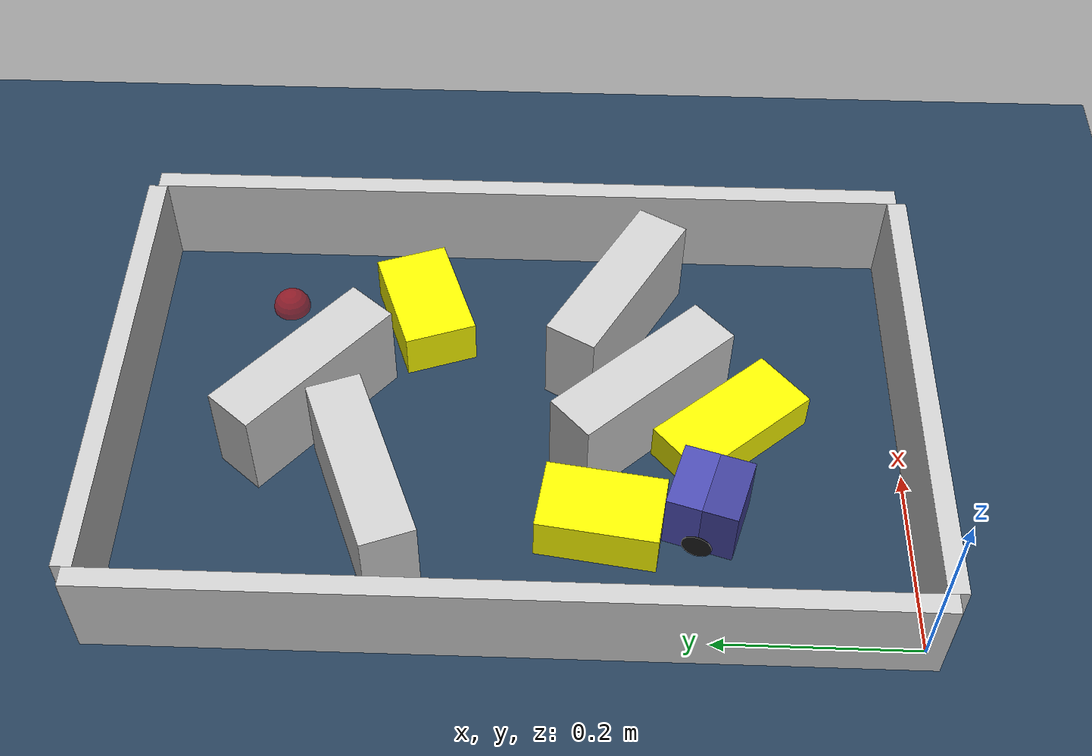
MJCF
<?xml version='1.0' encoding='utf-8'?>
<mujoco model="real_buildable">
  <compiler angle="degree" />
  <option timestep="0.002" integrator="implicitfast" iterations="100" cone="elliptic" />
  <default>
    <geom density="1" />
  </default>
  <asset>
    <texture builtin="gradient" height="3072" rgb1="0.3 0.5 0.7" rgb2="0 0 0" type="skybox" width="512" />
    <texture builtin="checker" height="300" mark="edge" markrgb="0.8 0.8 0.8" name="groundplane" rgb1="0.2 0.3 0.4" rgb2="0.1 0.2 0.3" type="2d" width="300" />
    <material name="groundplane" reflectance="0.2" texrepeat="5 5" texture="groundplane" texuniform="true" />
  </asset>
  <worldbody>
    <light dir="0 0 -1" directional="true" pos="0 0 1.5" />
    <geom name="floor" type="plane" condim="4" friction="0.5 0.005 0.001" material="groundplane" size="0 0 0.05" />
    <body name="walls">
      <geom name="wall_boundary_left" type="box" condim="4" friction="1.0 0.005 0.0001" rgba="0.8 0.8 0.8 1" pos="-0.010000 0.387500 0.050000" euler="0 0 0.000000" size="0.010000 0.397500 0.050000" />
      <geom name="wall_boundary_right" type="box" condim="4" friction="1.0 0.005 0.0001" rgba="0.8 0.8 0.8 1" pos="0.500000 0.387500 0.050000" euler="0 0 0.000000" size="0.010000 0.397500 0.050000" />
      <geom name="wall_boundary_bottom" type="box" condim="4" friction="1.0 0.005 0.0001" rgba="0.8 0.8 0.8 1" pos="0.245000 -0.010000 0.050000" euler="0 0 0.000000" size="0.245000 0.010000 0.050000" />
      <geom name="wall_boundary_top" type="box" condim="4" friction="1.0 0.005 0.0001" rgba="0.8 0.8 0.8 1" pos="0.245000 0.785000 0.050000" euler="0 0 0.000000" size="0.245000 0.010000 0.050000" />
      <geom name="wall_inner_1" type="box" condim="4" friction="1.0 0.005 0.0001" rgba="0.8 0.8 0.8 1" pos="0.372899 0.288295 0.050000" euler="0 0 -29.588602" size="0.097500 0.027500 0.050000" />
      <geom name="wall_inner_2" type="box" condim="4" friction="1.0 0.005 0.0001" rgba="0.8 0.8 0.8 1" pos="0.250287 0.263436 0.050000" euler="0 0 -47.711311" size="0.097500 0.027500 0.050000" />
      <geom name="wall_inner_3" type="box" condim="4" friction="1.0 0.005 0.0001" rgba="0.8 0.8 0.8 1" pos="0.132000 0.532000 0.050000" euler="0 0 20.900000" size="0.097500 0.027500 0.050000" />
      <geom name="wall_inner_4" type="box" condim="4" friction="1.0 0.005 0.0001" rgba="0.8 0.8 0.8 1" pos="0.256000 0.601000 0.050000" euler="0 0 139.600000" size="0.097500 0.027500 0.050000" />
    </body>
    <body name="car" pos="0.12832868740488337 0.20009574480514053 0.01" quat="0.80367924578134287 0 0 0.59506274450710817">
      <freejoint name="car_freejoint" />
      <inertial pos="0 0 0.0375" mass="0.35" diaginertia="0.000266 0.000266 0.000286" />
      <geom name="front_chassis_collision" type="box" pos="0.0175 0 0.0375" size="0.0175 0.035 0.0325" rgba="0.3 0.3 0.7 1" />
      <geom name="rear_chassis_collision" type="box" pos="-0.0175 0 0.0375" size="0.0175 0.035 0.0325" rgba="0.25 0.25 0.6 1" />
      <geom name="front_marker" type="box" pos="0.034 0 0.0505" size="0.002 0.015 0.01" rgba="1 0.2 0.2 1" contype="0" conaffinity="0" />
      <body name="rear_support_body" pos="-0.03 0 0.0025">
        <joint name="rear_caster_joint" type="ball" damping="0.0001" />
        <inertial pos="0 0 0" mass="0.025" diaginertia="0.000001 0.000001 0.000001" />
        <geom name="rear_support" type="sphere" pos="0 0 0" size="0.0025" friction="0 0 0" rgba="0.7 0.1 0.1 1" />
      </body>
      <body name="front_support_body" pos="0.03 0 0.0025">
        <joint name="front_caster_joint" type="ball" damping="0.0001" />
        <inertial pos="0 0 0" mass="0.025" diaginertia="0.000001 0.000001 0.000001" />
        <geom name="front_support" type="sphere" pos="0 0 0" size="0.0025" friction="0 0 0" rgba="0.1 0.7 0.1 1" />
      </body>
      <body name="left_wheel" pos="0 0.0375 0.015">
        <inertial pos="0 0 0" mass="0.05" diaginertia="0.000003 0.000006 0.000003" />
        <joint name="left_wheel_joint" type="hinge" axis="0 1 0" damping="0.01" armature="0.0001" />
        <geom name="left_wheel_collision" type="cylinder" size="0.015 0.0005" euler="90 0 0" rgba="0.1 0.1 0.1 1" />
      </body>
      <body name="right_wheel" pos="0 -0.0375 0.015">
        <inertial pos="0 0 0" mass="0.05" diaginertia="0.000003 0.000006 0.000003" />
        <joint name="right_wheel_joint" type="hinge" axis="0 1 0" damping="0.01" armature="0.0001" />
        <geom name="right_wheel_collision" type="cylinder" size="0.015 0.0005" euler="90 0 0" rgba="0.1 0.1 0.1 1" />
      </body>
    </body>
    <body name="obstacle_0_movable">
      <geom name="obstacle_0_movable" condim="4" pos="0.1240066911923815 0.30216830261109756 0.025000000000000001" friction="1 0.005 0.0001" rgba="1 1 0 1" size="0.037500 0.060000 0.025000" type="box" mass="0.1" quat="0.072522078954117858 0 0 0.99736680717987236" />
      <joint type="free" />
    </body>
    <body name="obstacle_1_movable">
      <geom name="obstacle_1_movable" condim="4" pos="0.38799999999999968 0.48999999999999871 0.025000000000000001" friction="1 0.005 0.0001" rgba="1 1 0 1" size="0.037500 0.060000 0.025000" type="box" mass="0.1" quat="0.81664155516167891 0 0 -0.57714519003723364" />
      <joint type="free" />
    </body>
    <body name="obstacle_2_movable">
      <geom name="obstacle_2_movable" condim="4" pos="0.24369802937759033 0.17110958029679352 0.02" friction="1 0.005 0.0001" rgba="1 1 0 1" size="0.035000 0.075000 0.020000" type="box" mass="0.1" quat="0.93800813646302694 0 0 0.34661323680603934" />
      <joint type="free" />
    </body>
    <site name="goal" type="sphere" pos="0.410000 0.640000 0.0" size="0.02" rgba="1 0 0 0.5" />
  </worldbody>
  <actuator>
    <velocity name="left_wheel_drive" joint="left_wheel_joint" ctrlrange="-25 25" kv="0.75" forcerange="-0.5 0.5" />
    <velocity name="right_wheel_drive" joint="right_wheel_joint" ctrlrange="-25 25" kv="0.75" forcerange="-0.5 0.5" />
  </actuator>
</mujoco>
